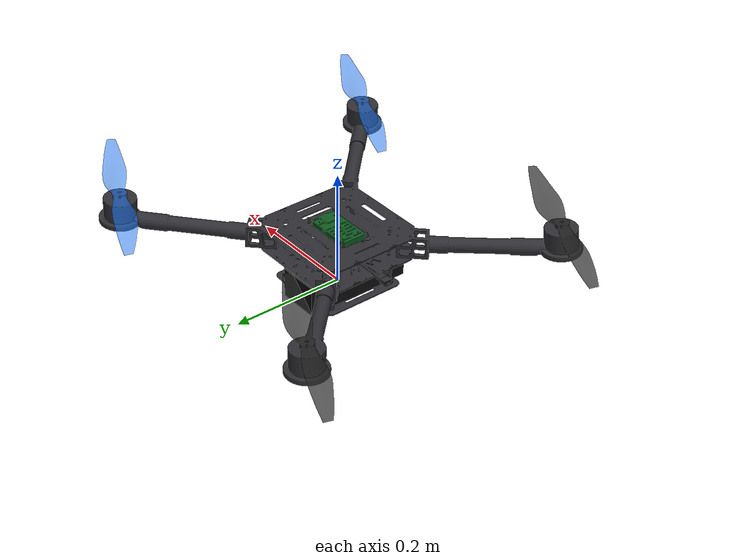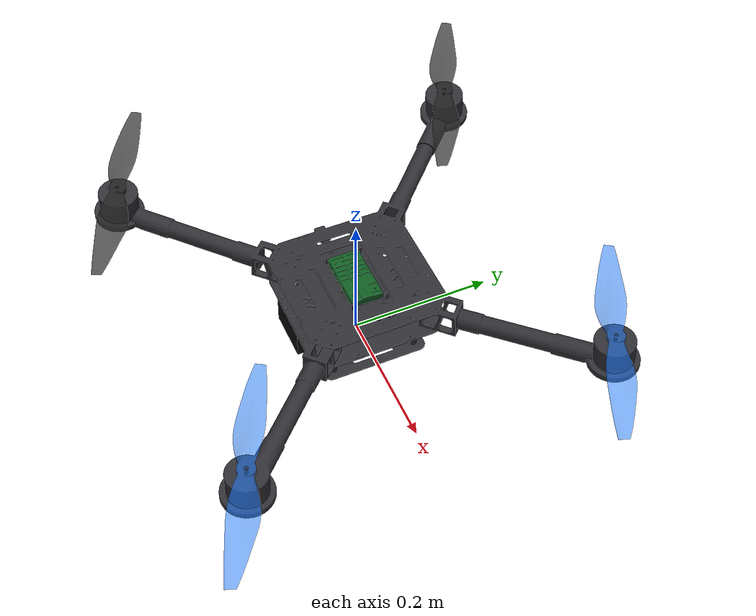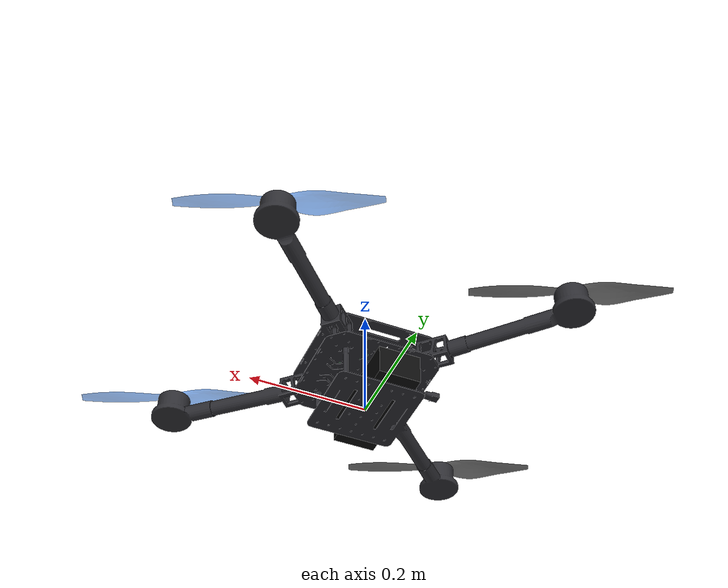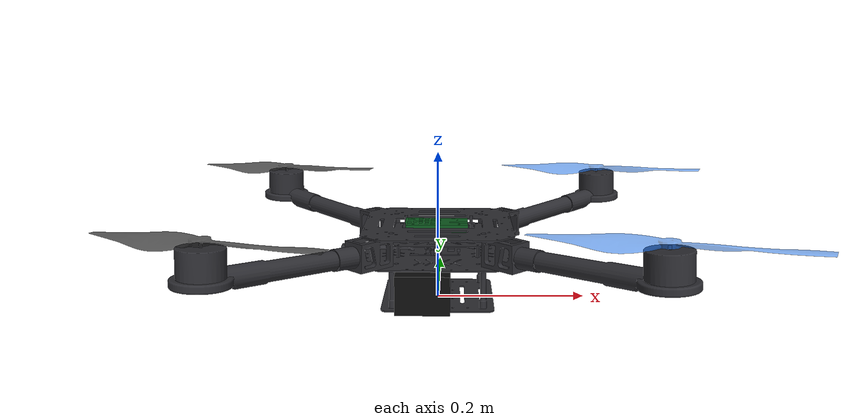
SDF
<?xml version='1.0' encoding='utf-8'?>
<sdf version="1.9">
  <model name="q940">
    <link name="base_link">
      <inertial>
        <pose>0 0 0.092449 0 -0 0</pose>
        <mass>4.2</mass>
        <inertia>
          <ixx>0.1863</ixx>
          <ixy>0</ixy>
          <ixz>0</ixz>
          <iyy>0.1796</iyy>
          <iyz>0</iyz>
          <izz>0.3197</izz>
        </inertia>
      </inertial>
      <collision name="base_link_collision">
        <pose>0 0 0.08 0 0 0</pose>
        <geometry>
          <box>
            <size>0.55 0.55 0.16</size>
          </box>
        </geometry>
        <surface>
          <contact>
            <ode>
              <min_depth>0.001</min_depth>
              <max_vel>0</max_vel>
            </ode>
          </contact>
          <friction>
            <ode />
          </friction>
        </surface>
      </collision>
      <visual name="base_link_visual">
        <pose>0 0 0 0 -0 0</pose>
        <geometry>
          <mesh>
            <scale>1 1 1</scale>
            <uri>model://q940/meshes/base_link.STL</uri>
          </mesh>
        </geometry>
        <material>
          <ambient>0.18 0.18 0.2 1</ambient>
          <diffuse>0.18 0.18 0.2 1</diffuse>
          <specular>0.05 0.05 0.05 1</specular>
          <emissive>0 0 0 1</emissive>
        </material>
      </visual>
      <sensor name="air_pressure_sensor" type="air_pressure">
        <always_on>true</always_on>
        <update_rate>50</update_rate>
        <air_pressure>
          <pressure>
            <noise type="gaussian">
              <mean>0</mean>
              <stddev>0.01</stddev>
            </noise>
          </pressure>
        </air_pressure>
      </sensor>
      <sensor name="magnetometer_sensor" type="magnetometer">
        <always_on>true</always_on>
        <update_rate>100</update_rate>
        <magnetometer>
          <x>
            <noise type="gaussian">
              <stddev>0.0001</stddev>
            </noise>
          </x>
          <y>
            <noise type="gaussian">
              <stddev>0.0001</stddev>
            </noise>
          </y>
          <z>
            <noise type="gaussian">
              <stddev>0.0001</stddev>
            </noise>
          </z>
        </magnetometer>
      </sensor>
      <sensor name="imu_sensor" type="imu">
        <always_on>true</always_on>
        <update_rate>250</update_rate>
        <imu>
          <angular_velocity>
            <x>
              <noise type="gaussian">
                <mean>0</mean>
                <stddev>0.0008726646</stddev>
              </noise>
            </x>
            <y>
              <noise type="gaussian">
                <mean>0</mean>
                <stddev>0.0008726646</stddev>
              </noise>
            </y>
            <z>
              <noise type="gaussian">
                <mean>0</mean>
                <stddev>0.0008726646</stddev>
              </noise>
            </z>
          </angular_velocity>
          <linear_acceleration>
            <x>
              <noise type="gaussian">
                <mean>0</mean>
                <stddev>0.00637</stddev>
              </noise>
            </x>
            <y>
              <noise type="gaussian">
                <mean>0</mean>
                <stddev>0.00637</stddev>
              </noise>
            </y>
            <z>
              <noise type="gaussian">
                <mean>0</mean>
                <stddev>0.00686</stddev>
              </noise>
            </z>
          </linear_acceleration>
        </imu>
      </sensor>
      <sensor name="navsat_sensor" type="navsat">
        <always_on>true</always_on>
        <update_rate>30</update_rate>
      </sensor>
    </link>
    <joint name="battery_joint" type="fixed">
      <pose relative_to="base_link">0 0 0 0 -0 0</pose>
      <parent>base_link</parent>
      <child>battery</child>
    </joint>
    <link name="battery">
      <pose relative_to="battery_joint">0 0 0 0 -0 0</pose>
      <inertial>
        <pose>-0.01925 0.0005 0.028 0 -0 0</pose>
        <mass>0.71014</mass>
        <inertia>
          <ixx>0.0023189</ixx>
          <ixy>0</ixy>
          <ixz>0</ixz>
          <iyy>0.00046255</iyy>
          <iyz>0</iyz>
          <izz>0.0024614</izz>
        </inertia>
      </inertial>
      <visual name="battery_visual">
        <pose>0 0 0 0 -0 0</pose>
        <geometry>
          <mesh>
            <scale>1 1 1</scale>
            <uri>model://q940/meshes/battery.STL</uri>
          </mesh>
        </geometry>
        <material>
          <ambient>0.05 0.05 0.05 1</ambient>
          <diffuse>0.05 0.05 0.05 1</diffuse>
          <specular>0.05 0.05 0.05 1</specular>
          <emissive>0 0 0 1</emissive>
        </material>
      </visual>
    </link>
    <joint name="flight_board_joint" type="fixed">
      <pose relative_to="base_link">0 0 0 0 -0 0</pose>
      <parent>base_link</parent>
      <child>flight_board</child>
    </joint>
    <link name="flight_board">
      <pose relative_to="flight_board_joint">0 0 0 0 -0 0</pose>
      <inertial>
        <pose>-0.000982 -0.000442 0.1 0 -0 0</pose>
        <mass>0.036895</mass>
        <inertia>
          <ixx>6.3471e-06</ixx>
          <ixy>0</ixy>
          <ixz>0</ixz>
          <iyy>2.2728e-05</iyy>
          <iyz>0</iyz>
          <izz>2.8422e-05</izz>
        </inertia>
      </inertial>
      <visual name="flight_board_visual">
        <pose>0 0 0 0 -0 0</pose>
        <geometry>
          <mesh>
            <scale>1 1 1</scale>
            <uri>model://q940/meshes/flight_board.STL</uri>
          </mesh>
        </geometry>
        <material>
          <ambient>0.05 0.35 0.12 1</ambient>
          <diffuse>0.05 0.35 0.12 1</diffuse>
          <specular>0.05 0.05 0.05 1</specular>
          <emissive>0 0 0 1</emissive>
        </material>
      </visual>
    </link>
    <joint name="rotor_1_joint" type="revolute">
      <pose relative_to="base_link">0.25256 -0.25294 0.13249 0 -0 0</pose>
      <parent>base_link</parent>
      <child>rotor_1</child>
      <axis>
        <xyz>0 0 -1</xyz>
        <limit>
          <lower>-1e+16</lower>
          <upper>1e+16</upper>
        </limit>
        <dynamics>
          <spring_reference>0</spring_reference>
          <spring_stiffness>0</spring_stiffness>
        </dynamics>
      </axis>
    </joint>
    <link name="rotor_1">
      <pose relative_to="rotor_1_joint">0 0 0 0 -0 0</pose>
      <inertial>
        <pose>-0.000254 0.0002 0.006503 0 -0 0</pose>
        <mass>0.020556</mass>
        <inertia>
          <ixx>2.3143e-05</ixx>
          <ixy>0</ixy>
          <ixz>0</ixz>
          <iyy>8.1105e-05</iyy>
          <iyz>0</iyz>
          <izz>0.00010345</izz>
        </inertia>
      </inertial>
      <visual name="rotor_1_visual">
        <pose>0 0 0 0 -0 0</pose>
        <geometry>
          <mesh>
            <scale>1 1 1</scale>
            <uri>model://q940/meshes/rotor_1.STL</uri>
          </mesh>
        </geometry>
        <material>
          <ambient>0.1 0.45 0.95 0.55</ambient>
          <diffuse>0.1 0.45 0.95 0.55</diffuse>
          <specular>0.05 0.05 0.05 1</specular>
          <emissive>0 0 0 1</emissive>
        </material>
        <transparency>0.45</transparency>
      </visual>
    </link>
    <joint name="rotor_2_joint" type="revolute">
      <pose relative_to="base_link">-0.25286 0.25265 0.13249 0 -0 0</pose>
      <parent>base_link</parent>
      <child>rotor_2</child>
      <axis>
        <xyz>0 0 -1</xyz>
        <limit>
          <lower>-1e+16</lower>
          <upper>1e+16</upper>
        </limit>
        <dynamics>
          <spring_reference>0</spring_reference>
          <spring_stiffness>0</spring_stiffness>
        </dynamics>
      </axis>
    </joint>
    <link name="rotor_2">
      <pose relative_to="rotor_2_joint">0 0 0 0 -0 0</pose>
      <inertial>
        <pose>0.000137 -0.000151 0.003505 0 -0 0</pose>
        <mass>0.020556</mass>
        <inertia>
          <ixx>3.6593e-05</ixx>
          <ixy>0</ixy>
          <ixz>0</ixz>
          <iyy>6.7648e-05</iyy>
          <iyz>0</iyz>
          <izz>0.00010346</izz>
        </inertia>
      </inertial>
      <visual name="rotor_2_visual">
        <pose>0 0 0 0 -0 0</pose>
        <geometry>
          <mesh>
            <scale>1 1 1</scale>
            <uri>model://q940/meshes/rotor_2.STL</uri>
          </mesh>
        </geometry>
        <material>
          <ambient>0.15 0.15 0.15 0.75</ambient>
          <diffuse>0.15 0.15 0.15 0.75</diffuse>
          <specular>0.05 0.05 0.05 1</specular>
          <emissive>0 0 0 1</emissive>
        </material>
        <transparency>0.25</transparency>
      </visual>
    </link>
    <joint name="rotor_3_joint" type="revolute">
      <pose relative_to="base_link">0.25268 0.25283 0.13249 0 -0 0</pose>
      <parent>base_link</parent>
      <child>rotor_3</child>
      <axis>
        <xyz>0 0 -1</xyz>
        <limit>
          <lower>-1e+16</lower>
          <upper>1e+16</upper>
        </limit>
        <dynamics>
          <spring_reference>0</spring_reference>
          <spring_stiffness>0</spring_stiffness>
        </dynamics>
      </axis>
    </joint>
    <link name="rotor_3">
      <pose relative_to="rotor_3_joint">0 0 0 0 -0 0</pose>
      <inertial>
        <pose>-0.00027 -0.000235 0.0065 0 -0 0</pose>
        <mass>0.020555</mass>
        <inertia>
          <ixx>1.9692e-05</ixx>
          <ixy>0</ixy>
          <ixz>0</ixz>
          <iyy>8.4555e-05</iyy>
          <iyz>0</iyz>
          <izz>0.00010349</izz>
        </inertia>
      </inertial>
      <visual name="rotor_3_visual">
        <pose>0 0 0 0 -0 0</pose>
        <geometry>
          <mesh>
            <scale>1 1 1</scale>
            <uri>model://q940/meshes/rotor_3.STL</uri>
          </mesh>
        </geometry>
        <material>
          <ambient>0.1 0.45 0.95 0.55</ambient>
          <diffuse>0.1 0.45 0.95 0.55</diffuse>
          <specular>0.05 0.05 0.05 1</specular>
          <emissive>0 0 0 1</emissive>
        </material>
        <transparency>0.45</transparency>
      </visual>
    </link>
    <joint name="rotor_4_joint" type="revolute">
      <pose relative_to="base_link">-0.25287 -0.25264 0.13249 0 -0 0</pose>
      <parent>base_link</parent>
      <child>rotor_4</child>
      <axis>
        <xyz>0 0 -1</xyz>
        <limit>
          <lower>-1e+16</lower>
          <upper>1e+16</upper>
        </limit>
        <dynamics>
          <spring_reference>0</spring_reference>
          <spring_stiffness>0</spring_stiffness>
        </dynamics>
      </axis>
    </joint>
    <link name="rotor_4">
      <pose relative_to="rotor_4_joint">0 0 0 0 -0 0</pose>
      <inertial>
        <pose>0.000237 0.00027 0.0065 0 -0 0</pose>
        <mass>0.020556</mass>
        <inertia>
          <ixx>3.428e-05</ixx>
          <ixy>0</ixy>
          <ixz>0</ixz>
          <iyy>6.9973e-05</iyy>
          <iyz>0</iyz>
          <izz>0.00010348</izz>
        </inertia>
      </inertial>
      <visual name="rotor_4_visual">
        <pose>0 0 0 0 -0 0</pose>
        <geometry>
          <mesh>
            <scale>1 1 1</scale>
            <uri>model://q940/meshes/rotor_4.STL</uri>
          </mesh>
        </geometry>
        <material>
          <ambient>0.15 0.15 0.15 0.75</ambient>
          <diffuse>0.15 0.15 0.15 0.75</diffuse>
          <specular>0.05 0.05 0.05 1</specular>
          <emissive>0 0 0 1</emissive>
        </material>
        <transparency>0.25</transparency>
      </visual>
    </link>
    <static>false</static>
    <plugin filename="gz-sim-multicopter-motor-model-system" name="gz::sim::systems::MulticopterMotorModel">
      <jointName>rotor_1_joint</jointName>
      <linkName>rotor_1</linkName>
      <turningDirection>ccw</turningDirection>
      <timeConstantUp>0.0125</timeConstantUp>
      <timeConstantDown>0.025</timeConstantDown>
      <maxRotVelocity>1300</maxRotVelocity>
      <motorConstant>2.8e-05</motorConstant>
      <momentConstant>0.06</momentConstant>
      <commandSubTopic>command/motor_speed</commandSubTopic>
      <motorNumber>0</motorNumber>
      <rotorDragCoefficient>0.000175</rotorDragCoefficient>
      <rollingMomentCoefficient>1e-06</rollingMomentCoefficient>
      <rotorVelocitySlowdownSim>10</rotorVelocitySlowdownSim>
      <motorType>velocity</motorType>
    </plugin>
    <plugin filename="gz-sim-multicopter-motor-model-system" name="gz::sim::systems::MulticopterMotorModel">
      <jointName>rotor_2_joint</jointName>
      <linkName>rotor_2</linkName>
      <turningDirection>ccw</turningDirection>
      <timeConstantUp>0.0125</timeConstantUp>
      <timeConstantDown>0.025</timeConstantDown>
      <maxRotVelocity>1300</maxRotVelocity>
      <motorConstant>2.8e-05</motorConstant>
      <momentConstant>0.06</momentConstant>
      <commandSubTopic>command/motor_speed</commandSubTopic>
      <motorNumber>1</motorNumber>
      <rotorDragCoefficient>0.000175</rotorDragCoefficient>
      <rollingMomentCoefficient>1e-06</rollingMomentCoefficient>
      <rotorVelocitySlowdownSim>10</rotorVelocitySlowdownSim>
      <motorType>velocity</motorType>
    </plugin>
    <plugin filename="gz-sim-multicopter-motor-model-system" name="gz::sim::systems::MulticopterMotorModel">
      <jointName>rotor_3_joint</jointName>
      <linkName>rotor_3</linkName>
      <turningDirection>cw</turningDirection>
      <timeConstantUp>0.0125</timeConstantUp>
      <timeConstantDown>0.025</timeConstantDown>
      <maxRotVelocity>1300</maxRotVelocity>
      <motorConstant>2.8e-05</motorConstant>
      <momentConstant>0.06</momentConstant>
      <commandSubTopic>command/motor_speed</commandSubTopic>
      <motorNumber>2</motorNumber>
      <rotorDragCoefficient>0.000175</rotorDragCoefficient>
      <rollingMomentCoefficient>1e-06</rollingMomentCoefficient>
      <rotorVelocitySlowdownSim>10</rotorVelocitySlowdownSim>
      <motorType>velocity</motorType>
    </plugin>
    <plugin filename="gz-sim-multicopter-motor-model-system" name="gz::sim::systems::MulticopterMotorModel">
      <jointName>rotor_4_joint</jointName>
      <linkName>rotor_4</linkName>
      <turningDirection>cw</turningDirection>
      <timeConstantUp>0.0125</timeConstantUp>
      <timeConstantDown>0.025</timeConstantDown>
      <maxRotVelocity>1300</maxRotVelocity>
      <motorConstant>2.8e-05</motorConstant>
      <momentConstant>0.06</momentConstant>
      <commandSubTopic>command/motor_speed</commandSubTopic>
      <motorNumber>3</motorNumber>
      <rotorDragCoefficient>0.000175</rotorDragCoefficient>
      <rollingMomentCoefficient>1e-06</rollingMomentCoefficient>
      <rotorVelocitySlowdownSim>10</rotorVelocitySlowdownSim>
      <motorType>velocity</motorType>
    </plugin>

    <!-- PX4 HITL bridge: Gazebo Harmonic <-> CUAV X7 Pro -->
    <plugin
      filename="libmavlink_hitl_gazebosim.so"
      name="mavlink_interface::GazeboMavlinkInterface">

      <robotNamespace></robotNamespace>
      <protocol_version>2.0</protocol_version>

      <!-- Direct serial connection to CUAV X7 Pro -->
      <use_serial>true</use_serial>
      <serial_device>/dev/ttyACM0</serial_device>
      <serial_baudrate>2000000</serial_baudrate>

      <!-- Sensor topics relative to this model -->
      <imuSubTopic>/link/base_link/sensor/imu_sensor/imu</imuSubTopic>
      <gpsSubTopic>/link/base_link/sensor/navsat_sensor/navsat</gpsSubTopic>
      <magSubTopic>/link/base_link/sensor/magnetometer_sensor/magnetometer</magSubTopic>
      <baroSubTopic>/link/base_link/sensor/air_pressure_sensor/air_pressure</baroSubTopic>

      <!-- World pose topic -->
      <poseSubTopic>/pose/info</poseSubTopic>

      <!-- Home position, keep same as your previous HIL_GPS test -->
      <homeLatitude>47.397742</homeLatitude>
      <homeLongitude>8.545594</homeLongitude>
      <homeAltitude>488.0</homeAltitude>

      <enable_lockstep>false</enable_lockstep>
    </plugin>

    <!-- Ground-truth odometry publisher -->
    <plugin
      filename="gz-sim-odometry-publisher-system"
      name="gz::sim::systems::OdometryPublisher">
      <dimensions>3</dimensions>
      <odom_frame>world</odom_frame>
      <robot_base_frame>base_link</robot_base_frame>
      <odom_publish_frequency>200</odom_publish_frequency>
    </plugin>

  </model>
</sdf>
